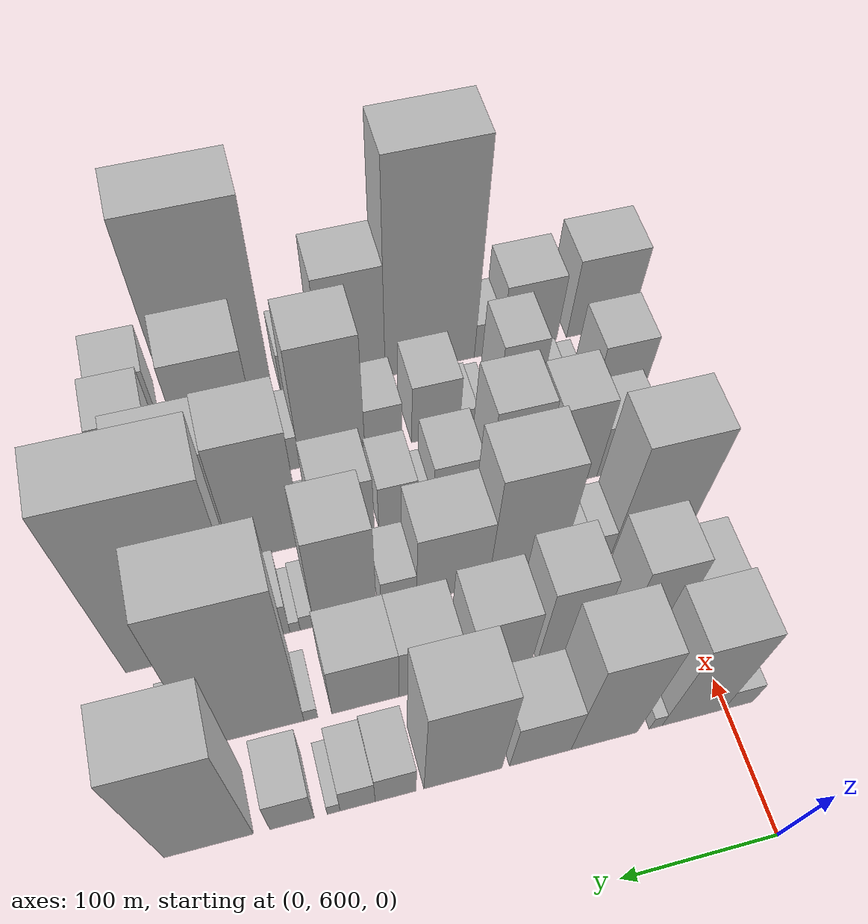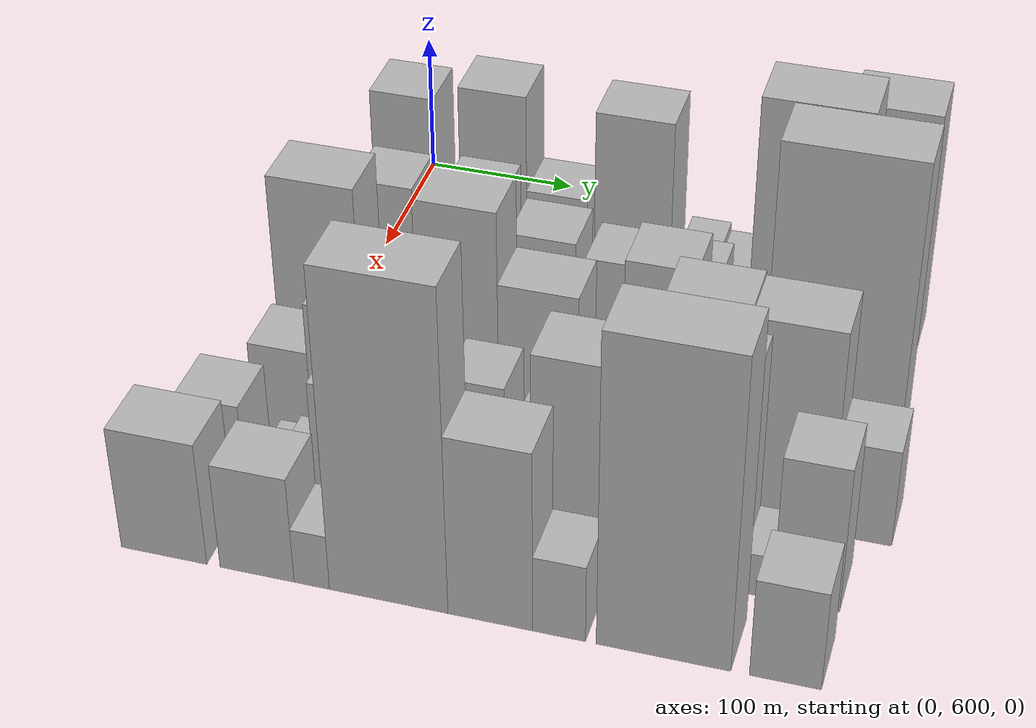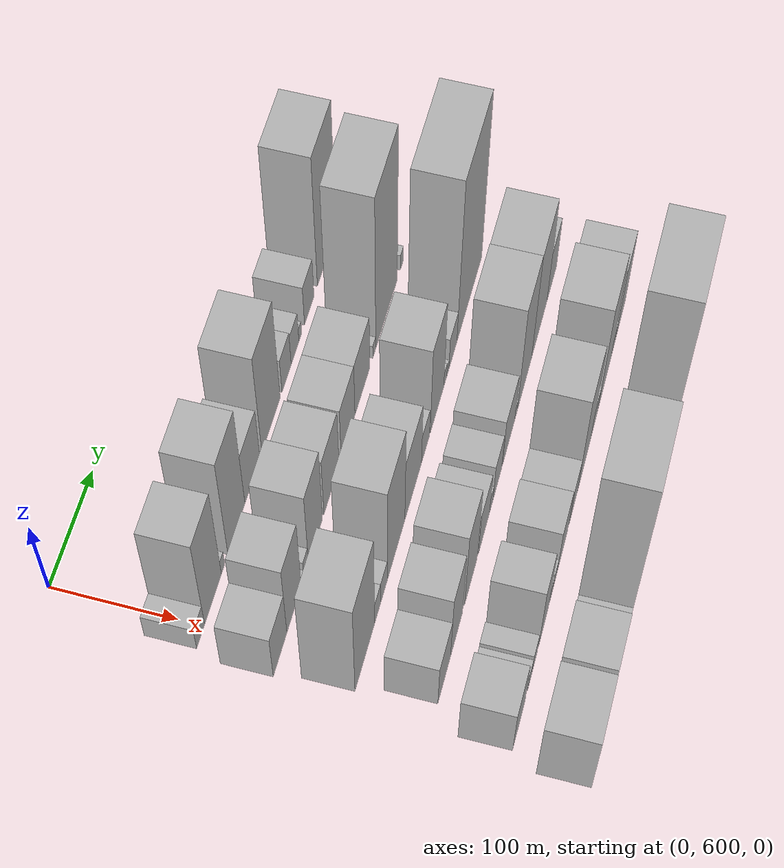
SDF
<sdf version="1.6">
 <world name="default">
  <model name="building_42">
   <static>1</static>
   <pose>100.0000 591.3535 0 0.000000 0.000000 0.000000</pose>
   <link name="link">
    <pose>0 0 16.50 0 0 0</pose>
    <collision name="collision"><geometry><box><size>40.0000 19.5873 33.0000</size></box></geometry></collision>
    <visual name="visual">
     <cast_shadows>0</cast_shadows>
     <geometry><box><size>40.0000 19.5873 33.0000</size></box></geometry>
     <material>
      <script>
       <uri>model://HANNAS_wall/materials/scripts</uri>
       <uri>model://HANNAS_wall/materials/textures</uri>
       <name>vrc/HANNAS_wall</name>
      </script>
     </material>
    </visual>
   </link>
  </model>
  <model name="building_43">
   <static>1</static>
   <pose>100.0000 622.0602 0 0.000000 0.000000 0.000000</pose>
   <link name="link">
    <pose>0 0 66.00 0 0 0</pose>
    <collision name="collision"><geometry><box><size>40.0000 41.8263 132.0000</size></box></geometry></collision>
    <visual name="visual">
     <cast_shadows>0</cast_shadows>
     <geometry><box><size>40.0000 41.8263 132.0000</size></box></geometry>
     <material>
      <script>
       <uri>model://HANNAS_wall/materials/scripts</uri>
       <uri>model://HANNAS_wall/materials/textures</uri>
       <name>vrc/HANNAS_wall</name>
      </script>
     </material>
    </visual>
   </link>
  </model>
  <model name="building_44">
   <static>1</static>
   <pose>100.0000 647.2480 0 0.000000 0.000000 0.000000</pose>
   <link name="link">
    <pose>0 0 10.50 0 0 0</pose>
    <collision name="collision"><geometry><box><size>40.0000 8.5493 21.0000</size></box></geometry></collision>
    <visual name="visual">
     <cast_shadows>0</cast_shadows>
     <geometry><box><size>40.0000 8.5493 21.0000</size></box></geometry>
     <material>
      <script>
       <uri>model://HANNAS_wall/materials/scripts</uri>
       <uri>model://HANNAS_wall/materials/textures</uri>
       <name>vrc/HANNAS_wall</name>
      </script>
     </material>
    </visual>
   </link>
  </model>
  <model name="building_45">
   <static>1</static>
   <pose>100.0000 681.4836 0 0.000000 0.000000 0.000000</pose>
   <link name="link">
    <pose>0 0 72.00 0 0 0</pose>
    <collision name="collision"><geometry><box><size>40.0000 43.9219 144.0000</size></box></geometry></collision>
    <visual name="visual">
     <cast_shadows>0</cast_shadows>
     <geometry><box><size>40.0000 43.9219 144.0000</size></box></geometry>
     <material>
      <script>
       <uri>model://HANNAS_wall/materials/scripts</uri>
       <uri>model://HANNAS_wall/materials/textures</uri>
       <name>vrc/HANNAS_wall</name>
      </script>
     </material>
    </visual>
   </link>
  </model>
  <model name="building_46">
   <static>1</static>
   <pose>100.0000 723.3058 0 0.000000 0.000000 0.000000</pose>
   <link name="link">
    <pose>0 0 37.50 0 0 0</pose>
    <collision name="collision"><geometry><box><size>40.0000 39.7223 75.0000</size></box></geometry></collision>
    <visual name="visual">
     <cast_shadows>0</cast_shadows>
     <geometry><box><size>40.0000 39.7223 75.0000</size></box></geometry>
     <material>
      <script>
       <uri>model://HANNAS_wall/materials/scripts</uri>
       <uri>model://HANNAS_wall/materials/textures</uri>
       <name>vrc/HANNAS_wall</name>
      </script>
     </material>
    </visual>
   </link>
  </model>
  <model name="building_47">
   <static>1</static>
   <pose>100.0000 773.0393 0 0.000000 0.000000 0.000000</pose>
   <link name="link">
    <pose>0 0 70.50 0 0 0</pose>
    <collision name="collision"><geometry><box><size>40.0000 49.7448 141.0000</size></box></geometry></collision>
    <visual name="visual">
     <cast_shadows>0</cast_shadows>
     <geometry><box><size>40.0000 49.7448 141.0000</size></box></geometry>
     <material>
      <script>
       <uri>model://HANNAS_wall/materials/scripts</uri>
       <uri>model://HANNAS_wall/materials/textures</uri>
       <name>vrc/HANNAS_wall</name>
      </script>
     </material>
    </visual>
   </link>
  </model>
  <model name="building_48">
   <static>1</static>
   <pose>100.0000 815.7194 0 0.000000 0.000000 0.000000</pose>
   <link name="link">
    <pose>0 0 24.00 0 0 0</pose>
    <collision name="collision"><geometry><box><size>40.0000 25.6154 48.0000</size></box></geometry></collision>
    <visual name="visual">
     <cast_shadows>0</cast_shadows>
     <geometry><box><size>40.0000 25.6154 48.0000</size></box></geometry>
     <material>
      <script>
       <uri>model://HANNAS_wall/materials/scripts</uri>
       <uri>model://HANNAS_wall/materials/textures</uri>
       <name>vrc/HANNAS_wall</name>
      </script>
     </material>
    </visual>
   </link>
  </model>
  <model name="building_49">
   <static>1</static>
   <pose>100.0000 839.4233 0 0.000000 0.000000 0.000000</pose>
   <link name="link">
    <pose>0 0 21.00 0 0 0</pose>
    <collision name="collision"><geometry><box><size>40.0000 21.7924 42.0000</size></box></geometry></collision>
    <visual name="visual">
     <cast_shadows>0</cast_shadows>
     <geometry><box><size>40.0000 21.7924 42.0000</size></box></geometry>
     <material>
      <script>
       <uri>model://HANNAS_wall/materials/scripts</uri>
       <uri>model://HANNAS_wall/materials/textures</uri>
       <name>vrc/HANNAS_wall</name>
      </script>
     </material>
    </visual>
   </link>
  </model>
  <model name="building_50">
   <static>1</static>
   <pose>100.0000 854.3223 0 0.000000 0.000000 0.000000</pose>
   <link name="link">
    <pose>0 0 9.00 0 0 0</pose>
    <collision name="collision"><geometry><box><size>40.0000 8.0055 18.0000</size></box></geometry></collision>
    <visual name="visual">
     <cast_shadows>0</cast_shadows>
     <geometry><box><size>40.0000 8.0055 18.0000</size></box></geometry>
     <material>
      <script>
       <uri>model://HANNAS_wall/materials/scripts</uri>
       <uri>model://HANNAS_wall/materials/textures</uri>
       <name>vrc/HANNAS_wall</name>
      </script>
     </material>
    </visual>
   </link>
  </model>
  <model name="building_51">
   <static>1</static>
   <pose>100.0000 879.9633 0 0.000000 0.000000 0.000000</pose>
   <link name="link">
    <pose>0 0 27.00 0 0 0</pose>
    <collision name="collision"><geometry><box><size>40.0000 27.2765 54.0000</size></box></geometry></collision>
    <visual name="visual">
     <cast_shadows>0</cast_shadows>
     <geometry><box><size>40.0000 27.2765 54.0000</size></box></geometry>
     <material>
      <script>
       <uri>model://HANNAS_wall/materials/scripts</uri>
       <uri>model://HANNAS_wall/materials/textures</uri>
       <name>vrc/HANNAS_wall</name>
      </script>
     </material>
    </visual>
   </link>
  </model>
  <model name="building_52">
   <static>1</static>
   <pose>100.0000 930.5848 0 0.000000 0.000000 0.000000</pose>
   <link name="link">
    <pose>0 0 87.00 0 0 0</pose>
    <collision name="collision"><geometry><box><size>40.0000 53.9666 174.0000</size></box></geometry></collision>
    <visual name="visual">
     <cast_shadows>0</cast_shadows>
     <geometry><box><size>40.0000 53.9666 174.0000</size></box></geometry>
     <material>
      <script>
       <uri>model://HANNAS_wall/materials/scripts</uri>
       <uri>model://HANNAS_wall/materials/textures</uri>
       <name>vrc/HANNAS_wall</name>
      </script>
     </material>
    </visual>
   </link>
  </model>
  <model name="building_96">
   <static>1</static>
   <pose>160.0000 592.6515 0 0.000000 0.000000 0.000000</pose>
   <link name="link">
    <pose>0 0 33.00 0 0 0</pose>
    <collision name="collision"><geometry><box><size>40.0000 35.4361 66.0000</size></box></geometry></collision>
    <visual name="visual">
     <cast_shadows>0</cast_shadows>
     <geometry><box><size>40.0000 35.4361 66.0000</size></box></geometry>
     <material>
      <script>
       <uri>model://HANNAS_wall/materials/scripts</uri>
       <uri>model://HANNAS_wall/materials/textures</uri>
       <name>vrc/HANNAS_wall</name>
      </script>
     </material>
    </visual>
   </link>
  </model>
  <model name="building_97">
   <static>1</static>
   <pose>160.0000 629.3509 0 0.000000 0.000000 0.000000</pose>
   <link name="link">
    <pose>0 0 52.50 0 0 0</pose>
    <collision name="collision"><geometry><box><size>40.0000 37.9627 105.0000</size></box></geometry></collision>
    <visual name="visual">
     <cast_shadows>0</cast_shadows>
     <geometry><box><size>40.0000 37.9627 105.0000</size></box></geometry>
     <material>
      <script>
       <uri>model://HANNAS_wall/materials/scripts</uri>
       <uri>model://HANNAS_wall/materials/textures</uri>
       <name>vrc/HANNAS_wall</name>
      </script>
     </material>
    </visual>
   </link>
  </model>
  <model name="building_98">
   <static>1</static>
   <pose>160.0000 651.8064 0 0.000000 0.000000 0.000000</pose>
   <link name="link">
    <pose>0 0 7.50 0 0 0</pose>
    <collision name="collision"><geometry><box><size>40.0000 6.9485 15.0000</size></box></geometry></collision>
    <visual name="visual">
     <cast_shadows>0</cast_shadows>
     <geometry><box><size>40.0000 6.9485 15.0000</size></box></geometry>
     <material>
      <script>
       <uri>model://HANNAS_wall/materials/scripts</uri>
       <uri>model://HANNAS_wall/materials/textures</uri>
       <name>vrc/HANNAS_wall</name>
      </script>
     </material>
    </visual>
   </link>
  </model>
  <model name="building_99">
   <static>1</static>
   <pose>160.0000 661.4851 0 0.000000 0.000000 0.000000</pose>
   <link name="link">
    <pose>0 0 13.50 0 0 0</pose>
    <collision name="collision"><geometry><box><size>40.0000 12.4088 27.0000</size></box></geometry></collision>
    <visual name="visual">
     <cast_shadows>0</cast_shadows>
     <geometry><box><size>40.0000 12.4088 27.0000</size></box></geometry>
     <material>
      <script>
       <uri>model://HANNAS_wall/materials/scripts</uri>
       <uri>model://HANNAS_wall/materials/textures</uri>
       <name>vrc/HANNAS_wall</name>
      </script>
     </material>
    </visual>
   </link>
  </model>
  <model name="building_100">
   <static>1</static>
   <pose>160.0000 686.7672 0 0.000000 0.000000 0.000000</pose>
   <link name="link">
    <pose>0 0 54.00 0 0 0</pose>
    <collision name="collision"><geometry><box><size>40.0000 38.1554 108.0000</size></box></geometry></collision>
    <visual name="visual">
     <cast_shadows>0</cast_shadows>
     <geometry><box><size>40.0000 38.1554 108.0000</size></box></geometry>
     <material>
      <script>
       <uri>model://HANNAS_wall/materials/scripts</uri>
       <uri>model://HANNAS_wall/materials/textures</uri>
       <name>vrc/HANNAS_wall</name>
      </script>
     </material>
    </visual>
   </link>
  </model>
  <model name="building_101">
   <static>1</static>
   <pose>160.0000 731.0531 0 0.000000 0.000000 0.000000</pose>
   <link name="link">
    <pose>0 0 42.00 0 0 0</pose>
    <collision name="collision"><geometry><box><size>40.0000 42.4162 84.0000</size></box></geometry></collision>
    <visual name="visual">
     <cast_shadows>0</cast_shadows>
     <geometry><box><size>40.0000 42.4162 84.0000</size></box></geometry>
     <material>
      <script>
       <uri>model://HANNAS_wall/materials/scripts</uri>
       <uri>model://HANNAS_wall/materials/textures</uri>
       <name>vrc/HANNAS_wall</name>
      </script>
     </material>
    </visual>
   </link>
  </model>
  <model name="building_102">
   <static>1</static>
   <pose>160.0000 778.1265 0 0.000000 0.000000 0.000000</pose>
   <link name="link">
    <pose>0 0 37.50 0 0 0</pose>
    <collision name="collision"><geometry><box><size>40.0000 39.7307 75.0000</size></box></geometry></collision>
    <visual name="visual">
     <cast_shadows>0</cast_shadows>
     <geometry><box><size>40.0000 39.7307 75.0000</size></box></geometry>
     <material>
      <script>
       <uri>model://HANNAS_wall/materials/scripts</uri>
       <uri>model://HANNAS_wall/materials/textures</uri>
       <name>vrc/HANNAS_wall</name>
      </script>
     </material>
    </visual>
   </link>
  </model>
  <model name="building_103">
   <static>1</static>
   <pose>160.0000 819.9003 0 0.000000 0.000000 0.000000</pose>
   <link name="link">
    <pose>0 0 37.50 0 0 0</pose>
    <collision name="collision"><geometry><box><size>40.0000 43.8170 75.0000</size></box></geometry></collision>
    <visual name="visual">
     <cast_shadows>0</cast_shadows>
     <geometry><box><size>40.0000 43.8170 75.0000</size></box></geometry>
     <material>
      <script>
       <uri>model://HANNAS_wall/materials/scripts</uri>
       <uri>model://HANNAS_wall/materials/textures</uri>
       <name>vrc/HANNAS_wall</name>
      </script>
     </material>
    </visual>
   </link>
  </model>
  <model name="building_104">
   <static>1</static>
   <pose>160.0000 855.2845 0 0.000000 0.000000 0.000000</pose>
   <link name="link">
    <pose>0 0 9.00 0 0 0</pose>
    <collision name="collision"><geometry><box><size>40.0000 8.9513 18.0000</size></box></geometry></collision>
    <visual name="visual">
     <cast_shadows>0</cast_shadows>
     <geometry><box><size>40.0000 8.9513 18.0000</size></box></geometry>
     <material>
      <script>
       <uri>model://HANNAS_wall/materials/scripts</uri>
       <uri>model://HANNAS_wall/materials/textures</uri>
       <name>vrc/HANNAS_wall</name>
      </script>
     </material>
    </visual>
   </link>
  </model>
  <model name="building_105">
   <static>1</static>
   <pose>160.0000 892.6308 0 0.000000 0.000000 0.000000</pose>
   <link name="link">
    <pose>0 0 103.50 0 0 0</pose>
    <collision name="collision"><geometry><box><size>40.0000 65.7413 207.0000</size></box></geometry></collision>
    <visual name="visual">
     <cast_shadows>0</cast_shadows>
     <geometry><box><size>40.0000 65.7413 207.0000</size></box></geometry>
     <material>
      <script>
       <uri>model://HANNAS_wall/materials/scripts</uri>
       <uri>model://HANNAS_wall/materials/textures</uri>
       <name>vrc/HANNAS_wall</name>
      </script>
     </material>
    </visual>
   </link>
  </model>
  <model name="building_106">
   <static>1</static>
   <pose>160.0000 940.2996 0 0.000000 0.000000 0.000000</pose>
   <link name="link">
    <pose>0 0 10.50 0 0 0</pose>
    <collision name="collision"><geometry><box><size>40.0000 9.5963 21.0000</size></box></geometry></collision>
    <visual name="visual">
     <cast_shadows>0</cast_shadows>
     <geometry><box><size>40.0000 9.5963 21.0000</size></box></geometry>
     <material>
      <script>
       <uri>model://HANNAS_wall/materials/scripts</uri>
       <uri>model://HANNAS_wall/materials/textures</uri>
       <name>vrc/HANNAS_wall</name>
      </script>
     </material>
    </visual>
   </link>
  </model>
  <model name="building_150">
   <static>1</static>
   <pose>220.0000 606.4350 0 0.000000 0.000000 0.000000</pose>
   <link name="link">
    <pose>0 0 70.50 0 0 0</pose>
    <collision name="collision"><geometry><box><size>40.0000 54.2305 141.0000</size></box></geometry></collision>
    <visual name="visual">
     <cast_shadows>0</cast_shadows>
     <geometry><box><size>40.0000 54.2305 141.0000</size></box></geometry>
     <material>
      <script>
       <uri>model://HANNAS_wall/materials/scripts</uri>
       <uri>model://HANNAS_wall/materials/textures</uri>
       <name>vrc/HANNAS_wall</name>
      </script>
     </material>
    </visual>
   </link>
  </model>
  <model name="building_151">
   <static>1</static>
   <pose>220.0000 642.2655 0 0.000000 0.000000 0.000000</pose>
   <link name="link">
    <pose>0 0 16.50 0 0 0</pose>
    <collision name="collision"><geometry><box><size>40.0000 17.4304 33.0000</size></box></geometry></collision>
    <visual name="visual">
     <cast_shadows>0</cast_shadows>
     <geometry><box><size>40.0000 17.4304 33.0000</size></box></geometry>
     <material>
      <script>
       <uri>model://HANNAS_wall/materials/scripts</uri>
       <uri>model://HANNAS_wall/materials/textures</uri>
       <name>vrc/HANNAS_wall</name>
      </script>
     </material>
    </visual>
   </link>
  </model>
  <model name="building_152">
   <static>1</static>
   <pose>220.0000 660.3875 0 0.000000 0.000000 0.000000</pose>
   <link name="link">
    <pose>0 0 16.50 0 0 0</pose>
    <collision name="collision"><geometry><box><size>40.0000 18.8135 33.0000</size></box></geometry></collision>
    <visual name="visual">
     <cast_shadows>0</cast_shadows>
     <geometry><box><size>40.0000 18.8135 33.0000</size></box></geometry>
     <material>
      <script>
       <uri>model://HANNAS_wall/materials/scripts</uri>
       <uri>model://HANNAS_wall/materials/textures</uri>
       <name>vrc/HANNAS_wall</name>
      </script>
     </material>
    </visual>
   </link>
  </model>
  <model name="building_153">
   <static>1</static>
   <pose>220.0000 695.3098 0 0.000000 0.000000 0.000000</pose>
   <link name="link">
    <pose>0 0 70.50 0 0 0</pose>
    <collision name="collision"><geometry><box><size>40.0000 51.0312 141.0000</size></box></geometry></collision>
    <visual name="visual">
     <cast_shadows>0</cast_shadows>
     <geometry><box><size>40.0000 51.0312 141.0000</size></box></geometry>
     <material>
      <script>
       <uri>model://HANNAS_wall/materials/scripts</uri>
       <uri>model://HANNAS_wall/materials/textures</uri>
       <name>vrc/HANNAS_wall</name>
      </script>
     </material>
    </visual>
   </link>
  </model>
  <model name="building_154">
   <static>1</static>
   <pose>220.0000 745.7307 0 0.000000 0.000000 0.000000</pose>
   <link name="link">
    <pose>0 0 45.00 0 0 0</pose>
    <collision name="collision"><geometry><box><size>40.0000 49.8106 90.0000</size></box></geometry></collision>
    <visual name="visual">
     <cast_shadows>0</cast_shadows>
     <geometry><box><size>40.0000 49.8106 90.0000</size></box></geometry>
     <material>
      <script>
       <uri>model://HANNAS_wall/materials/scripts</uri>
       <uri>model://HANNAS_wall/materials/textures</uri>
       <name>vrc/HANNAS_wall</name>
      </script>
     </material>
    </visual>
   </link>
  </model>
  <model name="building_155">
   <static>1</static>
   <pose>220.0000 782.6686 0 0.000000 0.000000 0.000000</pose>
   <link name="link">
    <pose>0 0 21.00 0 0 0</pose>
    <collision name="collision"><geometry><box><size>40.0000 24.0652 42.0000</size></box></geometry></collision>
    <visual name="visual">
     <cast_shadows>0</cast_shadows>
     <geometry><box><size>40.0000 24.0652 42.0000</size></box></geometry>
     <material>
      <script>
       <uri>model://HANNAS_wall/materials/scripts</uri>
       <uri>model://HANNAS_wall/materials/textures</uri>
       <name>vrc/HANNAS_wall</name>
      </script>
     </material>
    </visual>
   </link>
  </model>
  <model name="building_156">
   <static>1</static>
   <pose>220.0000 818.7981 0 0.000000 0.000000 0.000000</pose>
   <link name="link">
    <pose>0 0 61.50 0 0 0</pose>
    <collision name="collision"><geometry><box><size>40.0000 42.1937 123.0000</size></box></geometry></collision>
    <visual name="visual">
     <cast_shadows>0</cast_shadows>
     <geometry><box><size>40.0000 42.1937 123.0000</size></box></geometry>
     <material>
      <script>
       <uri>model://HANNAS_wall/materials/scripts</uri>
       <uri>model://HANNAS_wall/materials/textures</uri>
       <name>vrc/HANNAS_wall</name>
      </script>
     </material>
    </visual>
   </link>
  </model>
  <model name="building_157">
   <static>1</static>
   <pose>220.0000 844.5844 0 0.000000 0.000000 0.000000</pose>
   <link name="link">
    <pose>0 0 10.50 0 0 0</pose>
    <collision name="collision"><geometry><box><size>40.0000 9.3790 21.0000</size></box></geometry></collision>
    <visual name="visual">
     <cast_shadows>0</cast_shadows>
     <geometry><box><size>40.0000 9.3790 21.0000</size></box></geometry>
     <material>
      <script>
       <uri>model://HANNAS_wall/materials/scripts</uri>
       <uri>model://HANNAS_wall/materials/textures</uri>
       <name>vrc/HANNAS_wall</name>
      </script>
     </material>
    </visual>
   </link>
  </model>
  <model name="building_158">
   <static>1</static>
   <pose>220.0000 852.7119 0 0.000000 0.000000 0.000000</pose>
   <link name="link">
    <pose>0 0 7.50 0 0 0</pose>
    <collision name="collision"><geometry><box><size>40.0000 6.8759 15.0000</size></box></geometry></collision>
    <visual name="visual">
     <cast_shadows>0</cast_shadows>
     <geometry><box><size>40.0000 6.8759 15.0000</size></box></geometry>
     <material>
      <script>
       <uri>model://HANNAS_wall/materials/scripts</uri>
       <uri>model://HANNAS_wall/materials/textures</uri>
       <name>vrc/HANNAS_wall</name>
      </script>
     </material>
    </visual>
   </link>
  </model>
  <model name="building_159">
   <static>1</static>
   <pose>220.0000 869.0135 0 0.000000 0.000000 0.000000</pose>
   <link name="link">
    <pose>0 0 22.50 0 0 0</pose>
    <collision name="collision"><geometry><box><size>40.0000 25.7272 45.0000</size></box></geometry></collision>
    <visual name="visual">
     <cast_shadows>0</cast_shadows>
     <geometry><box><size>40.0000 25.7272 45.0000</size></box></geometry>
     <material>
      <script>
       <uri>model://HANNAS_wall/materials/scripts</uri>
       <uri>model://HANNAS_wall/materials/textures</uri>
       <name>vrc/HANNAS_wall</name>
      </script>
     </material>
    </visual>
   </link>
  </model>
  <model name="building_160">
   <static>1</static>
   <pose>220.0000 922.9330 0 0.000000 0.000000 0.000000</pose>
   <link name="link">
    <pose>0 0 109.50 0 0 0</pose>
    <collision name="collision"><geometry><box><size>40.0000 82.1119 219.0000</size></box></geometry></collision>
    <visual name="visual">
     <cast_shadows>0</cast_shadows>
     <geometry><box><size>40.0000 82.1119 219.0000</size></box></geometry>
     <material>
      <script>
       <uri>model://HANNAS_wall/materials/scripts</uri>
       <uri>model://HANNAS_wall/materials/textures</uri>
       <name>vrc/HANNAS_wall</name>
      </script>
     </material>
    </visual>
   </link>
  </model>
  <model name="building_206">
   <static>1</static>
   <pose>280.0000 604.0921 0 0.000000 0.000000 0.000000</pose>
   <link name="link">
    <pose>0 0 31.50 0 0 0</pose>
    <collision name="collision"><geometry><box><size>40.0000 37.1166 63.0000</size></box></geometry></collision>
    <visual name="visual">
     <cast_shadows>0</cast_shadows>
     <geometry><box><size>40.0000 37.1166 63.0000</size></box></geometry>
     <material>
      <script>
       <uri>model://HANNAS_wall/materials/scripts</uri>
       <uri>model://HANNAS_wall/materials/textures</uri>
       <name>vrc/HANNAS_wall</name>
      </script>
     </material>
    </visual>
   </link>
  </model>
  <model name="building_207">
   <static>1</static>
   <pose>280.0000 640.7457 0 0.000000 0.000000 0.000000</pose>
   <link name="link">
    <pose>0 0 49.50 0 0 0</pose>
    <collision name="collision"><geometry><box><size>40.0000 36.1906 99.0000</size></box></geometry></collision>
    <visual name="visual">
     <cast_shadows>0</cast_shadows>
     <geometry><box><size>40.0000 36.1906 99.0000</size></box></geometry>
     <material>
      <script>
       <uri>model://HANNAS_wall/materials/scripts</uri>
       <uri>model://HANNAS_wall/materials/textures</uri>
       <name>vrc/HANNAS_wall</name>
      </script>
     </material>
    </visual>
   </link>
  </model>
  <model name="building_208">
   <static>1</static>
   <pose>280.0000 684.3274 0 0.000000 0.000000 0.000000</pose>
   <link name="link">
    <pose>0 0 57.00 0 0 0</pose>
    <collision name="collision"><geometry><box><size>40.0000 38.9727 114.0000</size></box></geometry></collision>
    <visual name="visual">
     <cast_shadows>0</cast_shadows>
     <geometry><box><size>40.0000 38.9727 114.0000</size></box></geometry>
     <material>
      <script>
       <uri>model://HANNAS_wall/materials/scripts</uri>
       <uri>model://HANNAS_wall/materials/textures</uri>
       <name>vrc/HANNAS_wall</name>
      </script>
     </material>
    </visual>
   </link>
  </model>
  <model name="building_209">
   <static>1</static>
   <pose>280.0000 725.3032 0 0.000000 0.000000 0.000000</pose>
   <link name="link">
    <pose>0 0 31.50 0 0 0</pose>
    <collision name="collision"><geometry><box><size>40.0000 34.9791 63.0000</size></box></geometry></collision>
    <visual name="visual">
     <cast_shadows>0</cast_shadows>
     <geometry><box><size>40.0000 34.9791 63.0000</size></box></geometry>
     <material>
      <script>
       <uri>model://HANNAS_wall/materials/scripts</uri>
       <uri>model://HANNAS_wall/materials/textures</uri>
       <name>vrc/HANNAS_wall</name>
      </script>
     </material>
    </visual>
   </link>
  </model>
  <model name="building_210">
   <static>1</static>
   <pose>280.0000 748.3103 0 0.000000 0.000000 0.000000</pose>
   <link name="link">
    <pose>0 0 12.00 0 0 0</pose>
    <collision name="collision"><geometry><box><size>40.0000 11.0350 24.0000</size></box></geometry></collision>
    <visual name="visual">
     <cast_shadows>0</cast_shadows>
     <geometry><box><size>40.0000 11.0350 24.0000</size></box></geometry>
     <material>
      <script>
       <uri>model://HANNAS_wall/materials/scripts</uri>
       <uri>model://HANNAS_wall/materials/textures</uri>
       <name>vrc/HANNAS_wall</name>
      </script>
     </material>
    </visual>
   </link>
  </model>
  <model name="building_211">
   <static>1</static>
   <pose>280.0000 767.5840 0 0.000000 0.000000 0.000000</pose>
   <link name="link">
    <pose>0 0 27.00 0 0 0</pose>
    <collision name="collision"><geometry><box><size>40.0000 27.5125 54.0000</size></box></geometry></collision>
    <visual name="visual">
     <cast_shadows>0</cast_shadows>
     <geometry><box><size>40.0000 27.5125 54.0000</size></box></geometry>
     <material>
      <script>
       <uri>model://HANNAS_wall/materials/scripts</uri>
       <uri>model://HANNAS_wall/materials/textures</uri>
       <name>vrc/HANNAS_wall</name>
      </script>
     </material>
    </visual>
   </link>
  </model>
  <model name="building_212">
   <static>1</static>
   <pose>280.0000 804.7915 0 0.000000 0.000000 0.000000</pose>
   <link name="link">
    <pose>0 0 34.50 0 0 0</pose>
    <collision name="collision"><geometry><box><size>40.0000 40.9026 69.0000</size></box></geometry></collision>
    <visual name="visual">
     <cast_shadows>0</cast_shadows>
     <geometry><box><size>40.0000 40.9026 69.0000</size></box></geometry>
     <material>
      <script>
       <uri>model://HANNAS_wall/materials/scripts</uri>
       <uri>model://HANNAS_wall/materials/textures</uri>
       <name>vrc/HANNAS_wall</name>
      </script>
     </material>
    </visual>
   </link>
  </model>
  <model name="building_213">
   <static>1</static>
   <pose>280.0000 829.5508 0 0.000000 0.000000 0.000000</pose>
   <link name="link">
    <pose>0 0 9.00 0 0 0</pose>
    <collision name="collision"><geometry><box><size>40.0000 8.6161 18.0000</size></box></geometry></collision>
    <visual name="visual">
     <cast_shadows>0</cast_shadows>
     <geometry><box><size>40.0000 8.6161 18.0000</size></box></geometry>
     <material>
      <script>
       <uri>model://HANNAS_wall/materials/scripts</uri>
       <uri>model://HANNAS_wall/materials/textures</uri>
       <name>vrc/HANNAS_wall</name>
      </script>
     </material>
    </visual>
   </link>
  </model>
  <model name="building_214">
   <static>1</static>
   <pose>280.0000 858.2282 0 0.000000 0.000000 0.000000</pose>
   <link name="link">
    <pose>0 0 73.50 0 0 0</pose>
    <collision name="collision"><geometry><box><size>40.0000 48.7386 147.0000</size></box></geometry></collision>
    <visual name="visual">
     <cast_shadows>0</cast_shadows>
     <geometry><box><size>40.0000 48.7386 147.0000</size></box></geometry>
     <material>
      <script>
       <uri>model://HANNAS_wall/materials/scripts</uri>
       <uri>model://HANNAS_wall/materials/textures</uri>
       <name>vrc/HANNAS_wall</name>
      </script>
     </material>
    </visual>
   </link>
  </model>
  <model name="building_215">
   <static>1</static>
   <pose>280.0000 909.3327 0 0.000000 0.000000 0.000000</pose>
   <link name="link">
    <pose>0 0 72.00 0 0 0</pose>
    <collision name="collision"><geometry><box><size>40.0000 53.4705 144.0000</size></box></geometry></collision>
    <visual name="visual">
     <cast_shadows>0</cast_shadows>
     <geometry><box><size>40.0000 53.4705 144.0000</size></box></geometry>
     <material>
      <script>
       <uri>model://HANNAS_wall/materials/scripts</uri>
       <uri>model://HANNAS_wall/materials/textures</uri>
       <name>vrc/HANNAS_wall</name>
      </script>
     </material>
    </visual>
   </link>
  </model>
  <model name="building_216">
   <static>1</static>
   <pose>280.0000 953.5026 0 0.000000 0.000000 0.000000</pose>
   <link name="link">
    <pose>0 0 34.50 0 0 0</pose>
    <collision name="collision"><geometry><box><size>40.0000 34.8693 69.0000</size></box></geometry></collision>
    <visual name="visual">
     <cast_shadows>0</cast_shadows>
     <geometry><box><size>40.0000 34.8693 69.0000</size></box></geometry>
     <material>
      <script>
       <uri>model://HANNAS_wall/materials/scripts</uri>
       <uri>model://HANNAS_wall/materials/textures</uri>
       <name>vrc/HANNAS_wall</name>
      </script>
     </material>
    </visual>
   </link>
  </model>
  <model name="building_263">
   <static>1</static>
   <pose>340.0000 584.4771 0 0.000000 0.000000 0.000000</pose>
   <link name="link">
    <pose>0 0 33.00 0 0 0</pose>
    <collision name="collision"><geometry><box><size>40.0000 39.0474 66.0000</size></box></geometry></collision>
    <visual name="visual">
     <cast_shadows>0</cast_shadows>
     <geometry><box><size>40.0000 39.0474 66.0000</size></box></geometry>
     <material>
      <script>
       <uri>model://HANNAS_wall/materials/scripts</uri>
       <uri>model://HANNAS_wall/materials/textures</uri>
       <name>vrc/HANNAS_wall</name>
      </script>
     </material>
    </visual>
   </link>
  </model>
  <model name="building_264">
   <static>1</static>
   <pose>340.0000 618.5493 0 0.000000 0.000000 0.000000</pose>
   <link name="link">
    <pose>0 0 13.50 0 0 0</pose>
    <collision name="collision"><geometry><box><size>40.0000 13.0968 27.0000</size></box></geometry></collision>
    <visual name="visual">
     <cast_shadows>0</cast_shadows>
     <geometry><box><size>40.0000 13.0968 27.0000</size></box></geometry>
     <material>
      <script>
       <uri>model://HANNAS_wall/materials/scripts</uri>
       <uri>model://HANNAS_wall/materials/textures</uri>
       <name>vrc/HANNAS_wall</name>
      </script>
     </material>
    </visual>
   </link>
  </model>
  <model name="building_265">
   <static>1</static>
   <pose>340.0000 633.6724 0 0.000000 0.000000 0.000000</pose>
   <link name="link">
    <pose>0 0 16.50 0 0 0</pose>
    <collision name="collision"><geometry><box><size>40.0000 17.1495 33.0000</size></box></geometry></collision>
    <visual name="visual">
     <cast_shadows>0</cast_shadows>
     <geometry><box><size>40.0000 17.1495 33.0000</size></box></geometry>
     <material>
      <script>
       <uri>model://HANNAS_wall/materials/scripts</uri>
       <uri>model://HANNAS_wall/materials/textures</uri>
       <name>vrc/HANNAS_wall</name>
      </script>
     </material>
    </visual>
   </link>
  </model>
  <model name="building_266">
   <static>1</static>
   <pose>340.0000 663.2612 0 0.000000 0.000000 0.000000</pose>
   <link name="link">
    <pose>0 0 46.50 0 0 0</pose>
    <collision name="collision"><geometry><box><size>40.0000 32.0280 93.0000</size></box></geometry></collision>
    <visual name="visual">
     <cast_shadows>0</cast_shadows>
     <geometry><box><size>40.0000 32.0280 93.0000</size></box></geometry>
     <material>
      <script>
       <uri>model://HANNAS_wall/materials/scripts</uri>
       <uri>model://HANNAS_wall/materials/textures</uri>
       <name>vrc/HANNAS_wall</name>
      </script>
     </material>
    </visual>
   </link>
  </model>
  <model name="building_267">
   <static>1</static>
   <pose>340.0000 688.3700 0 0.000000 0.000000 0.000000</pose>
   <link name="link">
    <pose>0 0 12.00 0 0 0</pose>
    <collision name="collision"><geometry><box><size>40.0000 10.1895 24.0000</size></box></geometry></collision>
    <visual name="visual">
     <cast_shadows>0</cast_shadows>
     <geometry><box><size>40.0000 10.1895 24.0000</size></box></geometry>
     <material>
      <script>
       <uri>model://HANNAS_wall/materials/scripts</uri>
       <uri>model://HANNAS_wall/materials/textures</uri>
       <name>vrc/HANNAS_wall</name>
      </script>
     </material>
    </visual>
   </link>
  </model>
  <model name="building_268">
   <static>1</static>
   <pose>340.0000 699.9995 0 0.000000 0.000000 0.000000</pose>
   <link name="link">
    <pose>0 0 13.50 0 0 0</pose>
    <collision name="collision"><geometry><box><size>40.0000 13.0695 27.0000</size></box></geometry></collision>
    <visual name="visual">
     <cast_shadows>0</cast_shadows>
     <geometry><box><size>40.0000 13.0695 27.0000</size></box></geometry>
     <material>
      <script>
       <uri>model://HANNAS_wall/materials/scripts</uri>
       <uri>model://HANNAS_wall/materials/textures</uri>
       <name>vrc/HANNAS_wall</name>
      </script>
     </material>
    </visual>
   </link>
  </model>
  <model name="building_269">
   <static>1</static>
   <pose>340.0000 724.2615 0 0.000000 0.000000 0.000000</pose>
   <link name="link">
    <pose>0 0 34.50 0 0 0</pose>
    <collision name="collision"><geometry><box><size>40.0000 35.4545 69.0000</size></box></geometry></collision>
    <visual name="visual">
     <cast_shadows>0</cast_shadows>
     <geometry><box><size>40.0000 35.4545 69.0000</size></box></geometry>
     <material>
      <script>
       <uri>model://HANNAS_wall/materials/scripts</uri>
       <uri>model://HANNAS_wall/materials/textures</uri>
       <name>vrc/HANNAS_wall</name>
      </script>
     </material>
    </visual>
   </link>
  </model>
  <model name="building_270">
   <static>1</static>
   <pose>340.0000 762.6298 0 0.000000 0.000000 0.000000</pose>
   <link name="link">
    <pose>0 0 27.00 0 0 0</pose>
    <collision name="collision"><geometry><box><size>40.0000 27.2821 54.0000</size></box></geometry></collision>
    <visual name="visual">
     <cast_shadows>0</cast_shadows>
     <geometry><box><size>40.0000 27.2821 54.0000</size></box></geometry>
     <material>
      <script>
       <uri>model://HANNAS_wall/materials/scripts</uri>
       <uri>model://HANNAS_wall/materials/textures</uri>
       <name>vrc/HANNAS_wall</name>
      </script>
     </material>
    </visual>
   </link>
  </model>
  <model name="building_271">
   <static>1</static>
   <pose>340.0000 799.9324 0 0.000000 0.000000 0.000000</pose>
   <link name="link">
    <pose>0 0 70.50 0 0 0</pose>
    <collision name="collision"><geometry><box><size>40.0000 47.3230 141.0000</size></box></geometry></collision>
    <visual name="visual">
     <cast_shadows>0</cast_shadows>
     <geometry><box><size>40.0000 47.3230 141.0000</size></box></geometry>
     <material>
      <script>
       <uri>model://HANNAS_wall/materials/scripts</uri>
       <uri>model://HANNAS_wall/materials/textures</uri>
       <name>vrc/HANNAS_wall</name>
      </script>
     </material>
    </visual>
   </link>
  </model>
  <model name="building_272">
   <static>1</static>
   <pose>340.0000 835.8047 0 0.000000 0.000000 0.000000</pose>
   <link name="link">
    <pose>0 0 21.00 0 0 0</pose>
    <collision name="collision"><geometry><box><size>40.0000 24.4217 42.0000</size></box></geometry></collision>
    <visual name="visual">
     <cast_shadows>0</cast_shadows>
     <geometry><box><size>40.0000 24.4217 42.0000</size></box></geometry>
     <material>
      <script>
       <uri>model://HANNAS_wall/materials/scripts</uri>
       <uri>model://HANNAS_wall/materials/textures</uri>
       <name>vrc/HANNAS_wall</name>
      </script>
     </material>
    </visual>
   </link>
  </model>
  <model name="building_273">
   <static>1</static>
   <pose>340.0000 872.9203 0 0.000000 0.000000 0.000000</pose>
   <link name="link">
    <pose>0 0 75.00 0 0 0</pose>
    <collision name="collision"><geometry><box><size>40.0000 49.8095 150.0000</size></box></geometry></collision>
    <visual name="visual">
     <cast_shadows>0</cast_shadows>
     <geometry><box><size>40.0000 49.8095 150.0000</size></box></geometry>
     <material>
      <script>
       <uri>model://HANNAS_wall/materials/scripts</uri>
       <uri>model://HANNAS_wall/materials/textures</uri>
       <name>vrc/HANNAS_wall</name>
      </script>
     </material>
    </visual>
   </link>
  </model>
  <model name="building_274">
   <static>1</static>
   <pose>340.0000 906.1771 0 0.000000 0.000000 0.000000</pose>
   <link name="link">
    <pose>0 0 15.00 0 0 0</pose>
    <collision name="collision"><geometry><box><size>40.0000 16.7041 30.0000</size></box></geometry></collision>
    <visual name="visual">
     <cast_shadows>0</cast_shadows>
     <geometry><box><size>40.0000 16.7041 30.0000</size></box></geometry>
     <material>
      <script>
       <uri>model://HANNAS_wall/materials/scripts</uri>
       <uri>model://HANNAS_wall/materials/textures</uri>
       <name>vrc/HANNAS_wall</name>
      </script>
     </material>
    </visual>
   </link>
  </model>
  <model name="building_275">
   <static>1</static>
   <pose>340.0000 933.2642 0 0.000000 0.000000 0.000000</pose>
   <link name="link">
    <pose>0 0 51.00 0 0 0</pose>
    <collision name="collision"><geometry><box><size>40.0000 37.4700 102.0000</size></box></geometry></collision>
    <visual name="visual">
     <cast_shadows>0</cast_shadows>
     <geometry><box><size>40.0000 37.4700 102.0000</size></box></geometry>
     <material>
      <script>
       <uri>model://HANNAS_wall/materials/scripts</uri>
       <uri>model://HANNAS_wall/materials/textures</uri>
       <name>vrc/HANNAS_wall</name>
      </script>
     </material>
    </visual>
   </link>
  </model>
  <model name="building_318">
   <static>1</static>
   <pose>400.0000 578.5715 0 0.000000 0.000000 0.000000</pose>
   <link name="link">
    <pose>0 0 43.50 0 0 0</pose>
    <collision name="collision"><geometry><box><size>40.0000 51.8430 87.0000</size></box></geometry></collision>
    <visual name="visual">
     <cast_shadows>0</cast_shadows>
     <geometry><box><size>40.0000 51.8430 87.0000</size></box></geometry>
     <material>
      <script>
       <uri>model://HANNAS_wall/materials/scripts</uri>
       <uri>model://HANNAS_wall/materials/textures</uri>
       <name>vrc/HANNAS_wall</name>
      </script>
     </material>
    </visual>
   </link>
  </model>
  <model name="building_319">
   <static>1</static>
   <pose>400.0000 634.5807 0 0.000000 0.000000 0.000000</pose>
   <link name="link">
    <pose>0 0 37.50 0 0 0</pose>
    <collision name="collision"><geometry><box><size>40.0000 44.1755 75.0000</size></box></geometry></collision>
    <visual name="visual">
     <cast_shadows>0</cast_shadows>
     <geometry><box><size>40.0000 44.1755 75.0000</size></box></geometry>
     <material>
      <script>
       <uri>model://HANNAS_wall/materials/scripts</uri>
       <uri>model://HANNAS_wall/materials/textures</uri>
       <name>vrc/HANNAS_wall</name>
      </script>
     </material>
    </visual>
   </link>
  </model>
  <model name="building_320">
   <static>1</static>
   <pose>400.0000 667.0722 0 0.000000 0.000000 0.000000</pose>
   <link name="link">
    <pose>0 0 19.50 0 0 0</pose>
    <collision name="collision"><geometry><box><size>40.0000 20.8075 39.0000</size></box></geometry></collision>
    <visual name="visual">
     <cast_shadows>0</cast_shadows>
     <geometry><box><size>40.0000 20.8075 39.0000</size></box></geometry>
     <material>
      <script>
       <uri>model://HANNAS_wall/materials/scripts</uri>
       <uri>model://HANNAS_wall/materials/textures</uri>
       <name>vrc/HANNAS_wall</name>
      </script>
     </material>
    </visual>
   </link>
  </model>
  <model name="building_321">
   <static>1</static>
   <pose>400.0000 711.8896 0 0.000000 0.000000 0.000000</pose>
   <link name="link">
    <pose>0 0 111.00 0 0 0</pose>
    <collision name="collision"><geometry><box><size>40.0000 68.8273 222.0000</size></box></geometry></collision>
    <visual name="visual">
     <cast_shadows>0</cast_shadows>
     <geometry><box><size>40.0000 68.8273 222.0000</size></box></geometry>
     <material>
      <script>
       <uri>model://HANNAS_wall/materials/scripts</uri>
       <uri>model://HANNAS_wall/materials/textures</uri>
       <name>vrc/HANNAS_wall</name>
      </script>
     </material>
    </visual>
   </link>
  </model>
  <model name="building_322">
   <static>1</static>
   <pose>400.0000 770.4446 0 0.000000 0.000000 0.000000</pose>
   <link name="link">
    <pose>0 0 63.00 0 0 0</pose>
    <collision name="collision"><geometry><box><size>40.0000 48.2826 126.0000</size></box></geometry></collision>
    <visual name="visual">
     <cast_shadows>0</cast_shadows>
     <geometry><box><size>40.0000 48.2826 126.0000</size></box></geometry>
     <material>
      <script>
       <uri>model://HANNAS_wall/materials/scripts</uri>
       <uri>model://HANNAS_wall/materials/textures</uri>
       <name>vrc/HANNAS_wall</name>
      </script>
     </material>
    </visual>
   </link>
  </model>
  <model name="building_323">
   <static>1</static>
   <pose>400.0000 809.3922 0 0.000000 0.000000 0.000000</pose>
   <link name="link">
    <pose>0 0 27.00 0 0 0</pose>
    <collision name="collision"><geometry><box><size>40.0000 29.6127 54.0000</size></box></geometry></collision>
    <visual name="visual">
     <cast_shadows>0</cast_shadows>
     <geometry><box><size>40.0000 29.6127 54.0000</size></box></geometry>
     <material>
      <script>
       <uri>model://HANNAS_wall/materials/scripts</uri>
       <uri>model://HANNAS_wall/materials/textures</uri>
       <name>vrc/HANNAS_wall</name>
      </script>
     </material>
    </visual>
   </link>
  </model>
  <model name="building_324">
   <static>1</static>
   <pose>400.0000 867.2283 0 0.000000 0.000000 0.000000</pose>
   <link name="link">
    <pose>0 0 106.50 0 0 0</pose>
    <collision name="collision"><geometry><box><size>40.0000 74.0594 213.0000</size></box></geometry></collision>
    <visual name="visual">
     <cast_shadows>0</cast_shadows>
     <geometry><box><size>40.0000 74.0594 213.0000</size></box></geometry>
     <material>
      <script>
       <uri>model://HANNAS_wall/materials/scripts</uri>
       <uri>model://HANNAS_wall/materials/textures</uri>
       <name>vrc/HANNAS_wall</name>
      </script>
     </material>
    </visual>
   </link>
  </model>
  <model name="building_325">
   <static>1</static>
   <pose>400.0000 933.6634 0 0.000000 0.000000 0.000000</pose>
   <link name="link">
    <pose>0 0 34.50 0 0 0</pose>
    <collision name="collision"><geometry><box><size>40.0000 38.8108 69.0000</size></box></geometry></collision>
    <visual name="visual">
     <cast_shadows>0</cast_shadows>
     <geometry><box><size>40.0000 38.8108 69.0000</size></box></geometry>
     <material>
      <script>
       <uri>model://HANNAS_wall/materials/scripts</uri>
       <uri>model://HANNAS_wall/materials/textures</uri>
       <name>vrc/HANNAS_wall</name>
      </script>
     </material>
    </visual>
   </link>
  </model>
 </world>
</sdf>
